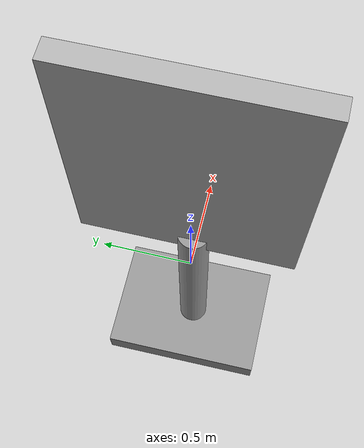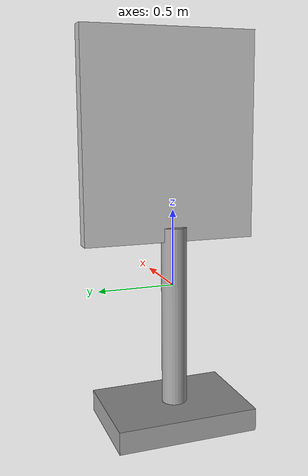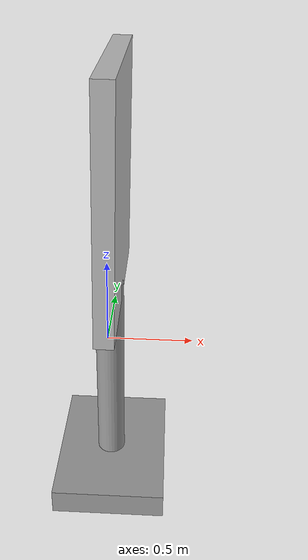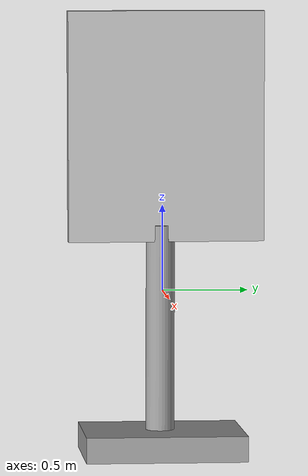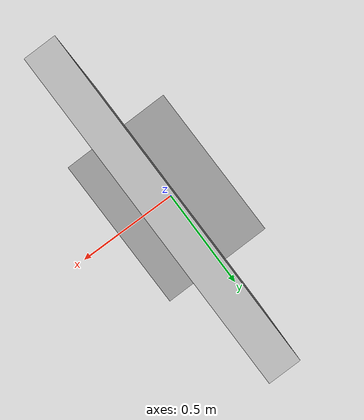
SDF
<?xml version='1.0'?>
<sdf version='1.7'>
  <model name='Sign_board_stand'>
    <link name='link_0'>
      <inertial>
        <mass>1</mass>
        <inertia>
          <ixx>0.166667</ixx>
          <ixy>0</ixy>
          <ixz>0</ixz>
          <iyy>0.166667</iyy>
          <iyz>0</iyz>
          <izz>0.166667</izz>
        </inertia>
        <pose>0 0 0 0 -0 0</pose>
      </inertial>
      <pose>0.012693 -0.016329 -0.964065 1.57085 0.003717 1.58448</pose>
      <gravity>1</gravity>
      <self_collide>0</self_collide>
      <kinematic>0</kinematic>
      <enable_wind>0</enable_wind>
      <visual name='visual'>
        <pose>0 0 0 0 -0 0</pose>
        <geometry>
          <mesh>
            <uri>model://sign_board_left_turn/meshes/sign_stand.obj</uri>
            <scale>1 1 1</scale>
          </mesh>
        </geometry>
        <material>
          <lighting>1</lighting>
          <script>
            <uri>file://media/materials/scripts/gazebo.material</uri>
            <name>Gazebo/Grey</name>
          </script>
          <shader type='pixel'/>
          <emissive>0 0 0 1</emissive>
        </material>
        <transparency>0</transparency>
        <cast_shadows>1</cast_shadows>
      </visual>
      <collision name='collision'>
        <laser_retro>0</laser_retro>
        <max_contacts>10</max_contacts>
        <pose>0 0 0 0 -0 0</pose>
        <geometry>
          <mesh>
            <uri>model://sign_board_left_turn/meshes/sign_stand.obj</uri>
            <scale>1 1 1</scale>
          </mesh>
        </geometry>
        <surface>
          <friction>
            <ode>
              <mu>1</mu>
              <mu2>1</mu2>
              <fdir1>0 0 0</fdir1>
              <slip1>0</slip1>
              <slip2>0</slip2>
            </ode>
            <torsional>
              <coefficient>1</coefficient>
              <patch_radius>0</patch_radius>
              <surface_radius>0</surface_radius>
              <use_patch_radius>1</use_patch_radius>
              <ode>
                <slip>0</slip>
              </ode>
            </torsional>
          </friction>
          <bounce>
            <restitution_coefficient>0</restitution_coefficient>
            <threshold>1e+06</threshold>
          </bounce>
          <contact>
            <collide_without_contact>0</collide_without_contact>
            <collide_without_contact_bitmask>1</collide_without_contact_bitmask>
            <collide_bitmask>1</collide_bitmask>
            <ode>
              <soft_cfm>0</soft_cfm>
              <soft_erp>0.2</soft_erp>
              <kp>1e+13</kp>
              <kd>1</kd>
              <max_vel>0.01</max_vel>
              <min_depth>0</min_depth>
            </ode>
            <bullet>
              <split_impulse>1</split_impulse>
              <split_impulse_penetration_threshold>-0.01</split_impulse_penetration_threshold>
              <soft_cfm>0</soft_cfm>
              <soft_erp>0.2</soft_erp>
              <kp>1e+13</kp>
              <kd>1</kd>
            </bullet>
          </contact>
        </surface>
      </collision>
    </link>
    <link name='link_1'>
      <inertial>
        <mass>1</mass>
        <inertia>
          <ixx>0.166667</ixx>
          <ixy>0</ixy>
          <ixz>0</ixz>
          <iyy>0.166667</iyy>
          <iyz>0</iyz>
          <izz>0.166667</izz>
        </inertia>
      </inertial>
      <pose>-0.012694 0.016329 0.964067 3.14159 1.56059 3.14159</pose>
      <visual name='visual'>
        <pose>0 0 0 0 -0 0</pose>
        <geometry>
          <mesh>
            <uri>model://sign_board_left_turn/meshes/sign_board.obj</uri>
            <scale>1 1 1</scale>
          </mesh>
        </geometry>
        <material>
          <script>
            <uri>model://sign_board_left_turn/materials/scripts</uri>
            <uri>model://sign_board_left_turn/materials/textures</uri>
            <name>sign_board_leftTurn/Diffuse</name>
          </script>
        </material>

        <transparency>0</transparency>
        <cast_shadows>1</cast_shadows>
      </visual>
      <collision name='collision'>
        <laser_retro>0</laser_retro>
        <max_contacts>10</max_contacts>
        <pose>0 0 0 0 -0 0</pose>
        <geometry>
          <mesh>
            <uri>model://sign_board_left_turn/meshes/sign_board.obj</uri>
            <scale>1 1 1</scale>
          </mesh>
        </geometry>
        <surface>
          <friction>
            <ode>
              <mu>1</mu>
              <mu2>1</mu2>
              <fdir1>0 0 0</fdir1>
              <slip1>0</slip1>
              <slip2>0</slip2>
            </ode>
            <torsional>
              <coefficient>1</coefficient>
              <patch_radius>0</patch_radius>
              <surface_radius>0</surface_radius>
              <use_patch_radius>1</use_patch_radius>
              <ode>
                <slip>0</slip>
              </ode>
            </torsional>
          </friction>
          <bounce>
            <restitution_coefficient>0</restitution_coefficient>
            <threshold>1e+06</threshold>
          </bounce>
          <contact>
            <collide_without_contact>0</collide_without_contact>
            <collide_without_contact_bitmask>1</collide_without_contact_bitmask>
            <collide_bitmask>1</collide_bitmask>
            <ode>
              <soft_cfm>0</soft_cfm>
              <soft_erp>0.2</soft_erp>
              <kp>1e+13</kp>
              <kd>1</kd>
              <max_vel>0.01</max_vel>
              <min_depth>0</min_depth>
            </ode>
            <bullet>
              <split_impulse>1</split_impulse>
              <split_impulse_penetration_threshold>-0.01</split_impulse_penetration_threshold>
              <soft_cfm>0</soft_cfm>
              <soft_erp>0.2</soft_erp>
              <kp>1e+13</kp>
              <kd>1</kd>
            </bullet>
          </contact>
        </surface>
      </collision>
    </link>
    <joint name='stand_board_J' type='fixed'>
      <parent>link_0</parent>
      <child>link_1</child>
      <pose>0 0 0 0 -0 0</pose>
      <physics>
        <ode>
          <limit>
            <cfm>0</cfm>
            <erp>0.2</erp>
          </limit>
          <suspension>
            <cfm>0</cfm>
            <erp>0.2</erp>
          </suspension>
        </ode>
      </physics>
    </joint>
    <static>0</static>
    <allow_auto_disable>1</allow_auto_disable>
  </model>
</sdf>
